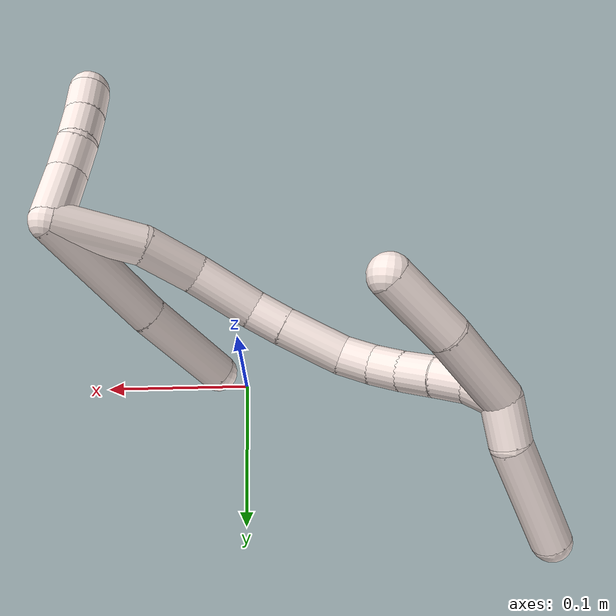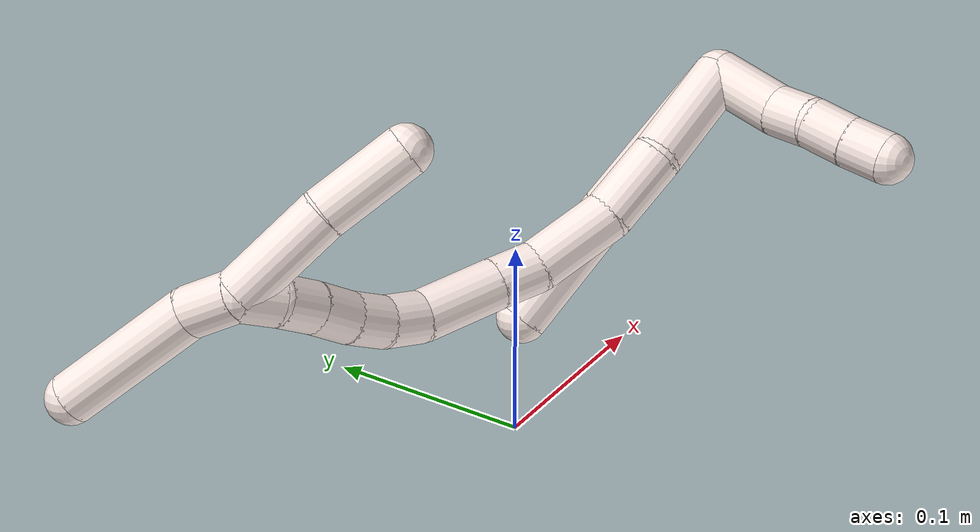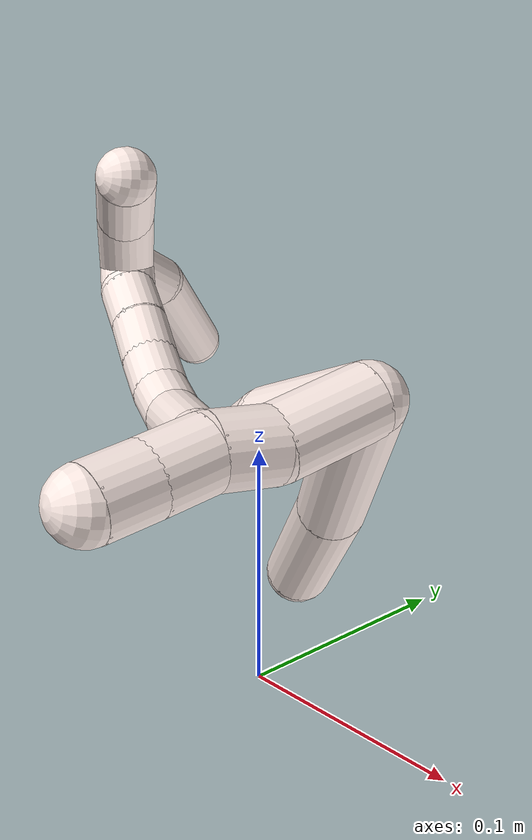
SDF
<sdf version="1.7">
 <world name="default">
  <model name="11">
   <static>0</static>
   <link name="11">
    <collision name="collision-cylinder-e_1_2_8">
     <pose>-0.008083 0.037812 0.016617 -1.15674 -0.193249 0.126387</pose>
     <geometry><cylinder><radius>0.0125</radius><length>0.084172</length></cylinder></geometry>
     <surface>
      <friction><ode><mu>1.16</mu><mu2>1.16</mu2><slip1>0</slip1><slip2>0</slip2></ode></friction>
      <contact><ode><kp>1e+06</kp><kd>1</kd><max_vel>0</max_vel><min_depth>0.001</min_depth></ode></contact>
     </surface>
    </collision>
    <visual name="visual-cylinder-e_1_2_8">
     <pose>-0.008083 0.037812 0.016617 -1.15674 -0.193249 0.126387</pose>
     <geometry><cylinder><radius>0.0125</radius><length>0.084172</length></cylinder></geometry>
     <material><ambient>1 0.933333 0.909804 1</ambient></material>
    </visual>
    <collision name="collision-cylinder-e_2_8_6">
     <pose>-0.023607 0.105648 0.044484 -1.21228 -0.228085 0.158463</pose>
     <geometry><cylinder><radius>0.0125</radius><length>0.065828</length></cylinder></geometry>
     <surface>
      <friction><ode><mu>1.16</mu><mu2>1.16</mu2><slip1>0</slip1><slip2>0</slip2></ode></friction>
      <contact><ode><kp>1e+06</kp><kd>1</kd><max_vel>0</max_vel><min_depth>0.001</min_depth></ode></contact>
     </surface>
    </collision>
    <visual name="visual-cylinder-e_2_8_6">
     <pose>-0.023607 0.105648 0.044484 -1.21228 -0.228085 0.158463</pose>
     <geometry><cylinder><radius>0.0125</radius><length>0.065828</length></cylinder></geometry>
     <material><ambient>1 0.933333 0.909804 1</ambient></material>
    </visual>
    <collision name="collision-cylinder-e_1_2_9">
     <pose>0.003647 0.004742 -0.016983 -2.86933 0.203972 -1.28333</pose>
     <geometry><cylinder><radius>0.0125</radius><length>0.036012</length></cylinder></geometry>
     <surface>
      <friction><ode><mu>1.16</mu><mu2>1.16</mu2><slip1>0</slip1><slip2>0</slip2></ode></friction>
      <contact><ode><kp>1e+06</kp><kd>1</kd><max_vel>0</max_vel><min_depth>0.001</min_depth></ode></contact>
     </surface>
    </collision>
    <visual name="visual-cylinder-e_1_2_9">
     <pose>0.003647 0.004742 -0.016983 -2.86933 0.203972 -1.28333</pose>
     <geometry><cylinder><radius>0.0125</radius><length>0.036012</length></cylinder></geometry>
     <material><ambient>1 0.933333 0.909804 1</ambient></material>
    </visual>
    <collision name="collision-cylinder-e_2_9_10">
     <pose>0.007069 0.010394 -0.044915 -3.05863 -0.020537 0.485087</pose>
     <geometry><cylinder><radius>0.0125</radius><length>0.021977</length></cylinder></geometry>
     <surface>
      <friction><ode><mu>1.16</mu><mu2>1.16</mu2><slip1>0</slip1><slip2>0</slip2></ode></friction>
      <contact><ode><kp>1e+06</kp><kd>1</kd><max_vel>0</max_vel><min_depth>0.001</min_depth></ode></contact>
     </surface>
    </collision>
    <visual name="visual-cylinder-e_2_9_10">
     <pose>0.007069 0.010394 -0.044915 -3.05863 -0.020537 0.485087</pose>
     <geometry><cylinder><radius>0.0125</radius><length>0.021977</length></cylinder></geometry>
     <material><ambient>1 0.933333 0.909804 1</ambient></material>
    </visual>
    <collision name="collision-cylinder-e_3_10_11">
     <pose>0.009148 0.013505 -0.066084 -2.92945 0.216971 -1.59347</pose>
     <geometry><cylinder><radius>0.0125</radius><length>0.021412</length></cylinder></geometry>
     <surface>
      <friction><ode><mu>1.16</mu><mu2>1.16</mu2><slip1>0</slip1><slip2>0</slip2></ode></friction>
      <contact><ode><kp>1e+06</kp><kd>1</kd><max_vel>0</max_vel><min_depth>0.001</min_depth></ode></contact>
     </surface>
    </collision>
    <visual name="visual-cylinder-e_3_10_11">
     <pose>0.009148 0.013505 -0.066084 -2.92945 0.216971 -1.59347</pose>
     <geometry><cylinder><radius>0.0125</radius><length>0.021412</length></cylinder></geometry>
     <material><ambient>1 0.933333 0.909804 1</ambient></material>
    </visual>
    <collision name="collision-cylinder-e_4_11_5">
     <pose>0.013774 0.017304 -0.086211 -2.98174 0.227353 -1.91804</pose>
     <geometry><cylinder><radius>0.0125</radius><length>0.020599</length></cylinder></geometry>
     <surface>
      <friction><ode><mu>1.16</mu><mu2>1.16</mu2><slip1>0</slip1><slip2>0</slip2></ode></friction>
      <contact><ode><kp>1e+06</kp><kd>1</kd><max_vel>0</max_vel><min_depth>0.001</min_depth></ode></contact>
     </surface>
    </collision>
    <visual name="visual-cylinder-e_4_11_5">
     <pose>0.013774 0.017304 -0.086211 -2.98174 0.227353 -1.91804</pose>
     <geometry><cylinder><radius>0.0125</radius><length>0.020599</length></cylinder></geometry>
     <material><ambient>1 0.933333 0.909804 1</ambient></material>
    </visual>
    <collision name="collision-cylinder-e_1_2_12">
     <pose>-0.015481 0.022202 -0.000228 -1.58108 -0.608873 0.614778</pose>
     <geometry><cylinder><radius>0.0125</radius><length>0.054134</length></cylinder></geometry>
     <surface>
      <friction><ode><mu>1.16</mu><mu2>1.16</mu2><slip1>0</slip1><slip2>0</slip2></ode></friction>
      <contact><ode><kp>1e+06</kp><kd>1</kd><max_vel>0</max_vel><min_depth>0.001</min_depth></ode></contact>
     </surface>
    </collision>
    <visual name="visual-cylinder-e_1_2_12">
     <pose>-0.015481 0.022202 -0.000228 -1.58108 -0.608873 0.614778</pose>
     <geometry><cylinder><radius>0.0125</radius><length>0.054134</length></cylinder></geometry>
     <material><ambient>1 0.933333 0.909804 1</ambient></material>
    </visual>
    <collision name="collision-cylinder-e_2_12_13">
     <pose>-0.03887 0.06058 0.003145 -1.35173 -0.445238 0.35912</pose>
     <geometry><cylinder><radius>0.0125</radius><length>0.036725</length></cylinder></geometry>
     <surface>
      <friction><ode><mu>1.16</mu><mu2>1.16</mu2><slip1>0</slip1><slip2>0</slip2></ode></friction>
      <contact><ode><kp>1e+06</kp><kd>1</kd><max_vel>0</max_vel><min_depth>0.001</min_depth></ode></contact>
     </surface>
    </collision>
    <visual name="visual-cylinder-e_2_12_13">
     <pose>-0.03887 0.06058 0.003145 -1.35173 -0.445238 0.35912</pose>
     <geometry><cylinder><radius>0.0125</radius><length>0.036725</length></cylinder></geometry>
     <material><ambient>1 0.933333 0.909804 1</ambient></material>
    </visual>
    <collision name="collision-cylinder-e_3_13_14">
     <pose>-0.059204 0.092444 0.013636 -1.15697 -0.627436 0.417537</pose>
     <geometry><cylinder><radius>0.0125</radius><length>0.042331</length></cylinder></geometry>
     <surface>
      <friction><ode><mu>1.16</mu><mu2>1.16</mu2><slip1>0</slip1><slip2>0</slip2></ode></friction>
      <contact><ode><kp>1e+06</kp><kd>1</kd><max_vel>0</max_vel><min_depth>0.001</min_depth></ode></contact>
     </surface>
    </collision>
    <visual name="visual-cylinder-e_3_13_14">
     <pose>-0.059204 0.092444 0.013636 -1.15697 -0.627436 0.417537</pose>
     <geometry><cylinder><radius>0.0125</radius><length>0.042331</length></cylinder></geometry>
     <material><ambient>1 0.933333 0.909804 1</ambient></material>
    </visual>
    <collision name="collision-cylinder-e_4_14_15">
     <pose>-0.080033 0.114193 0.024275 -1.01685 -0.867452 0.505183</pose>
     <geometry><cylinder><radius>0.0125</radius><length>0.022037</length></cylinder></geometry>
     <surface>
      <friction><ode><mu>1.16</mu><mu2>1.16</mu2><slip1>0</slip1><slip2>0</slip2></ode></friction>
      <contact><ode><kp>1e+06</kp><kd>1</kd><max_vel>0</max_vel><min_depth>0.001</min_depth></ode></contact>
     </surface>
    </collision>
    <visual name="visual-cylinder-e_4_14_15">
     <pose>-0.080033 0.114193 0.024275 -1.01685 -0.867452 0.505183</pose>
     <geometry><cylinder><radius>0.0125</radius><length>0.022037</length></cylinder></geometry>
     <material><ambient>1 0.933333 0.909804 1</ambient></material>
    </visual>
    <collision name="collision-cylinder-e_5_15_16">
     <pose>-0.10417 0.131555 0.034109 -1.07691 -0.886479 0.55265</pose>
     <geometry><cylinder><radius>0.0125</radius><length>0.040611</length></cylinder></geometry>
     <surface>
      <friction><ode><mu>1.16</mu><mu2>1.16</mu2><slip1>0</slip1><slip2>0</slip2></ode></friction>
      <contact><ode><kp>1e+06</kp><kd>1</kd><max_vel>0</max_vel><min_depth>0.001</min_depth></ode></contact>
     </surface>
    </collision>
    <visual name="visual-cylinder-e_5_15_16">
     <pose>-0.10417 0.131555 0.034109 -1.07691 -0.886479 0.55265</pose>
     <geometry><cylinder><radius>0.0125</radius><length>0.040611</length></cylinder></geometry>
     <material><ambient>1 0.933333 0.909804 1</ambient></material>
    </visual>
    <collision name="collision-cylinder-e_6_16_17">
     <pose>-0.129646 0.14584 0.042267 -0.963445 -1.2139 0.69647</pose>
     <geometry><cylinder><radius>0.0125</radius><length>0.020794</length></cylinder></geometry>
     <surface>
      <friction><ode><mu>1.16</mu><mu2>1.16</mu2><slip1>0</slip1><slip2>0</slip2></ode></friction>
      <contact><ode><kp>1e+06</kp><kd>1</kd><max_vel>0</max_vel><min_depth>0.001</min_depth></ode></contact>
     </surface>
    </collision>
    <visual name="visual-cylinder-e_6_16_17">
     <pose>-0.129646 0.14584 0.042267 -0.963445 -1.2139 0.69647</pose>
     <geometry><cylinder><radius>0.0125</radius><length>0.020794</length></cylinder></geometry>
     <material><ambient>1 0.933333 0.909804 1</ambient></material>
    </visual>
    <collision name="collision-cylinder-e_7_17_18">
     <pose>-0.149526 0.149366 0.045986 -0.318402 -1.40145 0.269234</pose>
     <geometry><cylinder><radius>0.0125</radius><length>0.020572</length></cylinder></geometry>
     <surface>
      <friction><ode><mu>1.16</mu><mu2>1.16</mu2><slip1>0</slip1><slip2>0</slip2></ode></friction>
      <contact><ode><kp>1e+06</kp><kd>1</kd><max_vel>0</max_vel><min_depth>0.001</min_depth></ode></contact>
     </surface>
    </collision>
    <visual name="visual-cylinder-e_7_17_18">
     <pose>-0.149526 0.149366 0.045986 -0.318402 -1.40145 0.269234</pose>
     <geometry><cylinder><radius>0.0125</radius><length>0.020572</length></cylinder></geometry>
     <material><ambient>1 0.933333 0.909804 1</ambient></material>
    </visual>
    <collision name="collision-cylinder-e_8_18_19">
     <pose>-0.170487 0.149187 0.048998 0.48589 -1.42912 -0.423551</pose>
     <geometry><cylinder><radius>0.0125</radius><length>0.021863</length></cylinder></geometry>
     <surface>
      <friction><ode><mu>1.16</mu><mu2>1.16</mu2><slip1>0</slip1><slip2>0</slip2></ode></friction>
      <contact><ode><kp>1e+06</kp><kd>1</kd><max_vel>0</max_vel><min_depth>0.001</min_depth></ode></contact>
     </surface>
    </collision>
    <visual name="visual-cylinder-e_8_18_19">
     <pose>-0.170487 0.149187 0.048998 0.48589 -1.42912 -0.423551</pose>
     <geometry><cylinder><radius>0.0125</radius><length>0.021863</length></cylinder></geometry>
     <material><ambient>1 0.933333 0.909804 1</ambient></material>
    </visual>
    <collision name="collision-cylinder-e_9_19_20">
     <pose>-0.191641 0.148465 0.051705 0.001411 -1.44156 -0.00124</pose>
     <geometry><cylinder><radius>0.0125</radius><length>0.020837</length></cylinder></geometry>
     <surface>
      <friction><ode><mu>1.16</mu><mu2>1.16</mu2><slip1>0</slip1><slip2>0</slip2></ode></friction>
      <contact><ode><kp>1e+06</kp><kd>1</kd><max_vel>0</max_vel><min_depth>0.001</min_depth></ode></contact>
     </surface>
    </collision>
    <visual name="visual-cylinder-e_9_19_20">
     <pose>-0.191641 0.148465 0.051705 0.001411 -1.44156 -0.00124</pose>
     <geometry><cylinder><radius>0.0125</radius><length>0.020837</length></cylinder></geometry>
     <material><ambient>1 0.933333 0.909804 1</ambient></material>
    </visual>
    <collision name="collision-cylinder-e_10_20_1">
     <pose>-0.211305 0.149206 0.056697 -0.200792 -1.19111 0.136311</pose>
     <geometry><cylinder><radius>0.0125</radius><length>0.020096</length></cylinder></geometry>
     <surface>
      <friction><ode><mu>1.16</mu><mu2>1.16</mu2><slip1>0</slip1><slip2>0</slip2></ode></friction>
      <contact><ode><kp>1e+06</kp><kd>1</kd><max_vel>0</max_vel><min_depth>0.001</min_depth></ode></contact>
     </surface>
    </collision>
    <visual name="visual-cylinder-e_10_20_1">
     <pose>-0.211305 0.149206 0.056697 -0.200792 -1.19111 0.136311</pose>
     <geometry><cylinder><radius>0.0125</radius><length>0.020096</length></cylinder></geometry>
     <material><ambient>1 0.933333 0.909804 1</ambient></material>
    </visual>
    <collision name="collision-cylinder-e_1_1_21">
     <pose>-0.222261 0.156796 0.072061 -0.529021 -0.11909 0.032292</pose>
     <geometry><cylinder><radius>0.0125</radius><length>0.027332</length></cylinder></geometry>
     <surface>
      <friction><ode><mu>1.16</mu><mu2>1.16</mu2><slip1>0</slip1><slip2>0</slip2></ode></friction>
      <contact><ode><kp>1e+06</kp><kd>1</kd><max_vel>0</max_vel><min_depth>0.001</min_depth></ode></contact>
     </surface>
    </collision>
    <visual name="visual-cylinder-e_1_1_21">
     <pose>-0.222261 0.156796 0.072061 -0.529021 -0.11909 0.032292</pose>
     <geometry><cylinder><radius>0.0125</radius><length>0.027332</length></cylinder></geometry>
     <material><ambient>1 0.933333 0.909804 1</ambient></material>
    </visual>
    <collision name="collision-cylinder-e_2_21_4">
     <pose>-0.229776 0.190175 0.107891 -0.83303 -0.162875 0.072184</pose>
     <geometry><cylinder><radius>0.0125</radius><length>0.072668</length></cylinder></geometry>
     <surface>
      <friction><ode><mu>1.16</mu><mu2>1.16</mu2><slip1>0</slip1><slip2>0</slip2></ode></friction>
      <contact><ode><kp>1e+06</kp><kd>1</kd><max_vel>0</max_vel><min_depth>0.001</min_depth></ode></contact>
     </surface>
    </collision>
    <visual name="visual-cylinder-e_2_21_4">
     <pose>-0.229776 0.190175 0.107891 -0.83303 -0.162875 0.072184</pose>
     <geometry><cylinder><radius>0.0125</radius><length>0.072668</length></cylinder></geometry>
     <material><ambient>1 0.933333 0.909804 1</ambient></material>
    </visual>
    <collision name="collision-cylinder-e_1_1_22">
     <pose>-0.212617 0.127515 0.048424 2.05931 0.305798 0.502019</pose>
     <geometry><cylinder><radius>0.0125</radius><length>0.053281</length></cylinder></geometry>
     <surface>
      <friction><ode><mu>1.16</mu><mu2>1.16</mu2><slip1>0</slip1><slip2>0</slip2></ode></friction>
      <contact><ode><kp>1e+06</kp><kd>1</kd><max_vel>0</max_vel><min_depth>0.001</min_depth></ode></contact>
     </surface>
    </collision>
    <visual name="visual-cylinder-e_1_1_22">
     <pose>-0.212617 0.127515 0.048424 2.05931 0.305798 0.502019</pose>
     <geometry><cylinder><radius>0.0125</radius><length>0.053281</length></cylinder></geometry>
     <material><ambient>1 0.933333 0.909804 1</ambient></material>
    </visual>
    <collision name="collision-cylinder-e_2_22_3">
     <pose>-0.194676 0.086776 0.025913 2.09516 0.438634 0.737488</pose>
     <geometry><cylinder><radius>0.0125</radius><length>0.046719</length></cylinder></geometry>
     <surface>
      <friction><ode><mu>1.16</mu><mu2>1.16</mu2><slip1>0</slip1><slip2>0</slip2></ode></friction>
      <contact><ode><kp>1e+06</kp><kd>1</kd><max_vel>0</max_vel><min_depth>0.001</min_depth></ode></contact>
     </surface>
    </collision>
    <visual name="visual-cylinder-e_2_22_3">
     <pose>-0.194676 0.086776 0.025913 2.09516 0.438634 0.737488</pose>
     <geometry><cylinder><radius>0.0125</radius><length>0.046719</length></cylinder></geometry>
     <material><ambient>1 0.933333 0.909804 1</ambient></material>
    </visual>
    <collision name="collision-sphere-3">
     <pose>-0.184755 0.068469 0.015325 0 -0 0</pose>
     <geometry><sphere><radius>0.0125</radius></sphere></geometry>
     <surface>
      <friction><ode><mu>1.16</mu><mu2>1.16</mu2><slip1>0</slip1><slip2>0</slip2></ode></friction>
      <contact><ode><kp>1e+06</kp><kd>1</kd><max_vel>0</max_vel><min_depth>0.001</min_depth></ode></contact>
     </surface>
    </collision>
    <visual name="visual-sphere-3">
     <pose>-0.184755 0.068469 0.015325 0 -0 0</pose>
     <geometry><sphere><radius>0.0125</radius></sphere></geometry>
     <material><ambient>1 0.933333 0.909804 1</ambient></material>
    </visual>
    <collision name="collision-sphere-22">
     <pose>-0.204597 0.105082 0.036501 0 -0 0</pose>
     <geometry><sphere><radius>0.0125</radius></sphere></geometry>
     <surface>
      <friction><ode><mu>1.16</mu><mu2>1.16</mu2><slip1>0</slip1><slip2>0</slip2></ode></friction>
      <contact><ode><kp>1e+06</kp><kd>1</kd><max_vel>0</max_vel><min_depth>0.001</min_depth></ode></contact>
     </surface>
    </collision>
    <visual name="visual-sphere-22">
     <pose>-0.204597 0.105082 0.036501 0 -0 0</pose>
     <geometry><sphere><radius>0.0125</radius></sphere></geometry>
     <material><ambient>1 0.933333 0.909804 1</ambient></material>
    </visual>
    <collision name="collision-sphere-4">
     <pose>-0.235668 0.216706 0.132007 0 -0 0</pose>
     <geometry><sphere><radius>0.0125</radius></sphere></geometry>
     <surface>
      <friction><ode><mu>1.16</mu><mu2>1.16</mu2><slip1>0</slip1><slip2>0</slip2></ode></friction>
      <contact><ode><kp>1e+06</kp><kd>1</kd><max_vel>0</max_vel><min_depth>0.001</min_depth></ode></contact>
     </surface>
    </collision>
    <visual name="visual-sphere-4">
     <pose>-0.235668 0.216706 0.132007 0 -0 0</pose>
     <geometry><sphere><radius>0.0125</radius></sphere></geometry>
     <material><ambient>1 0.933333 0.909804 1</ambient></material>
    </visual>
    <collision name="collision-sphere-21">
     <pose>-0.223885 0.163645 0.083775 0 -0 0</pose>
     <geometry><sphere><radius>0.0125</radius></sphere></geometry>
     <surface>
      <friction><ode><mu>1.16</mu><mu2>1.16</mu2><slip1>0</slip1><slip2>0</slip2></ode></friction>
      <contact><ode><kp>1e+06</kp><kd>1</kd><max_vel>0</max_vel><min_depth>0.001</min_depth></ode></contact>
     </surface>
    </collision>
    <visual name="visual-sphere-21">
     <pose>-0.223885 0.163645 0.083775 0 -0 0</pose>
     <geometry><sphere><radius>0.0125</radius></sphere></geometry>
     <material><ambient>1 0.933333 0.909804 1</ambient></material>
    </visual>
    <collision name="collision-sphere-1">
     <pose>-0.220637 0.149948 0.060347 0 -0 0</pose>
     <geometry><sphere><radius>0.0125</radius></sphere></geometry>
     <surface>
      <friction><ode><mu>1.16</mu><mu2>1.16</mu2><slip1>0</slip1><slip2>0</slip2></ode></friction>
      <contact><ode><kp>1e+06</kp><kd>1</kd><max_vel>0</max_vel><min_depth>0.001</min_depth></ode></contact>
     </surface>
    </collision>
    <visual name="visual-sphere-1">
     <pose>-0.220637 0.149948 0.060347 0 -0 0</pose>
     <geometry><sphere><radius>0.0125</radius></sphere></geometry>
     <material><ambient>1 0.933333 0.909804 1</ambient></material>
    </visual>
    <collision name="collision-sphere-11">
     <pose>0.011453 0.015707 -0.076305 0 -0 0</pose>
     <geometry><sphere><radius>0.0125</radius></sphere></geometry>
     <surface>
      <friction><ode><mu>1.16</mu><mu2>1.16</mu2><slip1>0</slip1><slip2>0</slip2></ode></friction>
      <contact><ode><kp>1e+06</kp><kd>1</kd><max_vel>0</max_vel><min_depth>0.001</min_depth></ode></contact>
     </surface>
    </collision>
    <visual name="visual-sphere-11">
     <pose>0.011453 0.015707 -0.076305 0 -0 0</pose>
     <geometry><sphere><radius>0.0125</radius></sphere></geometry>
     <material><ambient>1 0.933333 0.909804 1</ambient></material>
    </visual>
    <collision name="collision-sphere-10">
     <pose>0.006843 0.011304 -0.055863 0 -0 0</pose>
     <geometry><sphere><radius>0.0125</radius></sphere></geometry>
     <surface>
      <friction><ode><mu>1.16</mu><mu2>1.16</mu2><slip1>0</slip1><slip2>0</slip2></ode></friction>
      <contact><ode><kp>1e+06</kp><kd>1</kd><max_vel>0</max_vel><min_depth>0.001</min_depth></ode></contact>
     </surface>
    </collision>
    <visual name="visual-sphere-10">
     <pose>0.006843 0.011304 -0.055863 0 -0 0</pose>
     <geometry><sphere><radius>0.0125</radius></sphere></geometry>
     <material><ambient>1 0.933333 0.909804 1</ambient></material>
    </visual>
    <collision name="collision-sphere-6">
     <pose>-0.03105 0.135671 0.055734 0 -0 0</pose>
     <geometry><sphere><radius>0.0125</radius></sphere></geometry>
     <surface>
      <friction><ode><mu>1.16</mu><mu2>1.16</mu2><slip1>0</slip1><slip2>0</slip2></ode></friction>
      <contact><ode><kp>1e+06</kp><kd>1</kd><max_vel>0</max_vel><min_depth>0.001</min_depth></ode></contact>
     </surface>
    </collision>
    <visual name="visual-sphere-6">
     <pose>-0.03105 0.135671 0.055734 0 -0 0</pose>
     <geometry><sphere><radius>0.0125</radius></sphere></geometry>
     <material><ambient>1 0.933333 0.909804 1</ambient></material>
    </visual>
    <collision name="collision-sphere-9">
     <pose>0.007295 0.009483 -0.033966 0 -0 0</pose>
     <geometry><sphere><radius>0.0125</radius></sphere></geometry>
     <surface>
      <friction><ode><mu>1.16</mu><mu2>1.16</mu2><slip1>0</slip1><slip2>0</slip2></ode></friction>
      <contact><ode><kp>1e+06</kp><kd>1</kd><max_vel>0</max_vel><min_depth>0.001</min_depth></ode></contact>
     </surface>
    </collision>
    <visual name="visual-sphere-9">
     <pose>0.007295 0.009483 -0.033966 0 -0 0</pose>
     <geometry><sphere><radius>0.0125</radius></sphere></geometry>
     <material><ambient>1 0.933333 0.909804 1</ambient></material>
    </visual>
    <collision name="collision-sphere-2">
     <geometry><sphere><radius>0.0125</radius></sphere></geometry>
     <surface>
      <friction><ode><mu>1.16</mu><mu2>1.16</mu2><slip1>0</slip1><slip2>0</slip2></ode></friction>
      <contact><ode><kp>1e+06</kp><kd>1</kd><max_vel>0</max_vel><min_depth>0.001</min_depth></ode></contact>
     </surface>
    </collision>
    <visual name="visual-sphere-2">
     <geometry><sphere><radius>0.0125</radius></sphere></geometry>
     <material><ambient>1 0.933333 0.909804 1</ambient></material>
    </visual>
    <collision name="collision-sphere-19">
     <pose>-0.181309 0.148467 0.050362 0 -0 0</pose>
     <geometry><sphere><radius>0.0125</radius></sphere></geometry>
     <surface>
      <friction><ode><mu>1.16</mu><mu2>1.16</mu2><slip1>0</slip1><slip2>0</slip2></ode></friction>
      <contact><ode><kp>1e+06</kp><kd>1</kd><max_vel>0</max_vel><min_depth>0.001</min_depth></ode></contact>
     </surface>
    </collision>
    <visual name="visual-sphere-19">
     <pose>-0.181309 0.148467 0.050362 0 -0 0</pose>
     <geometry><sphere><radius>0.0125</radius></sphere></geometry>
     <material><ambient>1 0.933333 0.909804 1</ambient></material>
    </visual>
    <collision name="collision-sphere-8">
     <pose>-0.016165 0.075625 0.033234 0 -0 0</pose>
     <geometry><sphere><radius>0.0125</radius></sphere></geometry>
     <surface>
      <friction><ode><mu>1.16</mu><mu2>1.16</mu2><slip1>0</slip1><slip2>0</slip2></ode></friction>
      <contact><ode><kp>1e+06</kp><kd>1</kd><max_vel>0</max_vel><min_depth>0.001</min_depth></ode></contact>
     </surface>
    </collision>
    <visual name="visual-sphere-8">
     <pose>-0.016165 0.075625 0.033234 0 -0 0</pose>
     <geometry><sphere><radius>0.0125</radius></sphere></geometry>
     <material><ambient>1 0.933333 0.909804 1</ambient></material>
    </visual>
    <collision name="collision-sphere-5">
     <pose>0.016096 0.018901 -0.096118 0 -0 0</pose>
     <geometry><sphere><radius>0.0125</radius></sphere></geometry>
     <surface>
      <friction><ode><mu>1.16</mu><mu2>1.16</mu2><slip1>0</slip1><slip2>0</slip2></ode></friction>
      <contact><ode><kp>1e+06</kp><kd>1</kd><max_vel>0</max_vel><min_depth>0.001</min_depth></ode></contact>
     </surface>
    </collision>
    <visual name="visual-sphere-5">
     <pose>0.016096 0.018901 -0.096118 0 -0 0</pose>
     <geometry><sphere><radius>0.0125</radius></sphere></geometry>
     <material><ambient>1 0.933333 0.909804 1</ambient></material>
    </visual>
    <collision name="collision-sphere-12">
     <pose>-0.030962 0.044403 -0.000457 0 -0 0</pose>
     <geometry><sphere><radius>0.0125</radius></sphere></geometry>
     <surface>
      <friction><ode><mu>1.16</mu><mu2>1.16</mu2><slip1>0</slip1><slip2>0</slip2></ode></friction>
      <contact><ode><kp>1e+06</kp><kd>1</kd><max_vel>0</max_vel><min_depth>0.001</min_depth></ode></contact>
     </surface>
    </collision>
    <visual name="visual-sphere-12">
     <pose>-0.030962 0.044403 -0.000457 0 -0 0</pose>
     <geometry><sphere><radius>0.0125</radius></sphere></geometry>
     <material><ambient>1 0.933333 0.909804 1</ambient></material>
    </visual>
    <collision name="collision-sphere-13">
     <pose>-0.046778 0.076756 0.006746 0 -0 0</pose>
     <geometry><sphere><radius>0.0125</radius></sphere></geometry>
     <surface>
      <friction><ode><mu>1.16</mu><mu2>1.16</mu2><slip1>0</slip1><slip2>0</slip2></ode></friction>
      <contact><ode><kp>1e+06</kp><kd>1</kd><max_vel>0</max_vel><min_depth>0.001</min_depth></ode></contact>
     </surface>
    </collision>
    <visual name="visual-sphere-13">
     <pose>-0.046778 0.076756 0.006746 0 -0 0</pose>
     <geometry><sphere><radius>0.0125</radius></sphere></geometry>
     <material><ambient>1 0.933333 0.909804 1</ambient></material>
    </visual>
    <collision name="collision-sphere-14">
     <pose>-0.071629 0.108132 0.020526 0 -0 0</pose>
     <geometry><sphere><radius>0.0125</radius></sphere></geometry>
     <surface>
      <friction><ode><mu>1.16</mu><mu2>1.16</mu2><slip1>0</slip1><slip2>0</slip2></ode></friction>
      <contact><ode><kp>1e+06</kp><kd>1</kd><max_vel>0</max_vel><min_depth>0.001</min_depth></ode></contact>
     </surface>
    </collision>
    <visual name="visual-sphere-14">
     <pose>-0.071629 0.108132 0.020526 0 -0 0</pose>
     <geometry><sphere><radius>0.0125</radius></sphere></geometry>
     <material><ambient>1 0.933333 0.909804 1</ambient></material>
    </visual>
    <collision name="collision-sphere-15">
     <pose>-0.088437 0.120253 0.028024 0 -0 0</pose>
     <geometry><sphere><radius>0.0125</radius></sphere></geometry>
     <surface>
      <friction><ode><mu>1.16</mu><mu2>1.16</mu2><slip1>0</slip1><slip2>0</slip2></ode></friction>
      <contact><ode><kp>1e+06</kp><kd>1</kd><max_vel>0</max_vel><min_depth>0.001</min_depth></ode></contact>
     </surface>
    </collision>
    <visual name="visual-sphere-15">
     <pose>-0.088437 0.120253 0.028024 0 -0 0</pose>
     <geometry><sphere><radius>0.0125</radius></sphere></geometry>
     <material><ambient>1 0.933333 0.909804 1</ambient></material>
    </visual>
    <collision name="collision-sphere-16">
     <pose>-0.119904 0.142857 0.040194 0 -0 0</pose>
     <geometry><sphere><radius>0.0125</radius></sphere></geometry>
     <surface>
      <friction><ode><mu>1.16</mu><mu2>1.16</mu2><slip1>0</slip1><slip2>0</slip2></ode></friction>
      <contact><ode><kp>1e+06</kp><kd>1</kd><max_vel>0</max_vel><min_depth>0.001</min_depth></ode></contact>
     </surface>
    </collision>
    <visual name="visual-sphere-16">
     <pose>-0.119904 0.142857 0.040194 0 -0 0</pose>
     <geometry><sphere><radius>0.0125</radius></sphere></geometry>
     <material><ambient>1 0.933333 0.909804 1</ambient></material>
    </visual>
    <collision name="collision-sphere-17">
     <pose>-0.139388 0.148823 0.04434 0 -0 0</pose>
     <geometry><sphere><radius>0.0125</radius></sphere></geometry>
     <surface>
      <friction><ode><mu>1.16</mu><mu2>1.16</mu2><slip1>0</slip1><slip2>0</slip2></ode></friction>
      <contact><ode><kp>1e+06</kp><kd>1</kd><max_vel>0</max_vel><min_depth>0.001</min_depth></ode></contact>
     </surface>
    </collision>
    <visual name="visual-sphere-17">
     <pose>-0.139388 0.148823 0.04434 0 -0 0</pose>
     <geometry><sphere><radius>0.0125</radius></sphere></geometry>
     <material><ambient>1 0.933333 0.909804 1</ambient></material>
    </visual>
    <collision name="collision-sphere-18">
     <pose>-0.159665 0.149908 0.047633 0 -0 0</pose>
     <geometry><sphere><radius>0.0125</radius></sphere></geometry>
     <surface>
      <friction><ode><mu>1.16</mu><mu2>1.16</mu2><slip1>0</slip1><slip2>0</slip2></ode></friction>
      <contact><ode><kp>1e+06</kp><kd>1</kd><max_vel>0</max_vel><min_depth>0.001</min_depth></ode></contact>
     </surface>
    </collision>
    <visual name="visual-sphere-18">
     <pose>-0.159665 0.149908 0.047633 0 -0 0</pose>
     <geometry><sphere><radius>0.0125</radius></sphere></geometry>
     <material><ambient>1 0.933333 0.909804 1</ambient></material>
    </visual>
    <collision name="collision-sphere-20">
     <pose>-0.201972 0.148463 0.053048 0 -0 0</pose>
     <geometry><sphere><radius>0.0125</radius></sphere></geometry>
     <surface>
      <friction><ode><mu>1.16</mu><mu2>1.16</mu2><slip1>0</slip1><slip2>0</slip2></ode></friction>
      <contact><ode><kp>1e+06</kp><kd>1</kd><max_vel>0</max_vel><min_depth>0.001</min_depth></ode></contact>
     </surface>
    </collision>
    <visual name="visual-sphere-20">
     <pose>-0.201972 0.148463 0.053048 0 -0 0</pose>
     <geometry><sphere><radius>0.0125</radius></sphere></geometry>
     <material><ambient>1 0.933333 0.909804 1</ambient></material>
    </visual>
    <inertial>
     <pose>-0.097558 0.094391 0.027802 0 -0 0</pose>
     <mass>0.75</mass>
     <inertia>
      <ixx>0.00018</ixx>
      <ixy>0</ixy>
      <ixz>0</ixz>
      <iyy>0.000134</iyy>
      <iyz>0</iyz>
      <izz>-6.3e-05</izz>
     </inertia>
    </inertial>
   </link>
   <pose>0.102783 -0.049086 0.161054 -1.74654 0.520689 -0.2616</pose>
  </model>
 </world>
</sdf>
